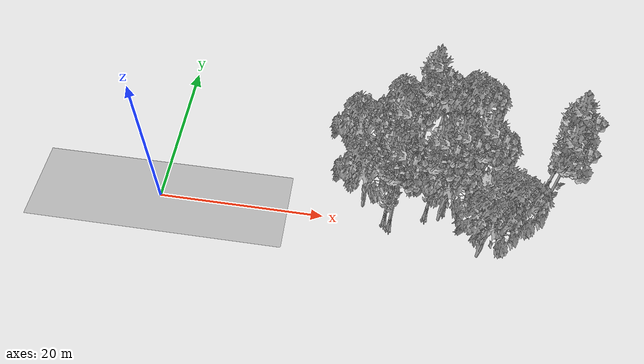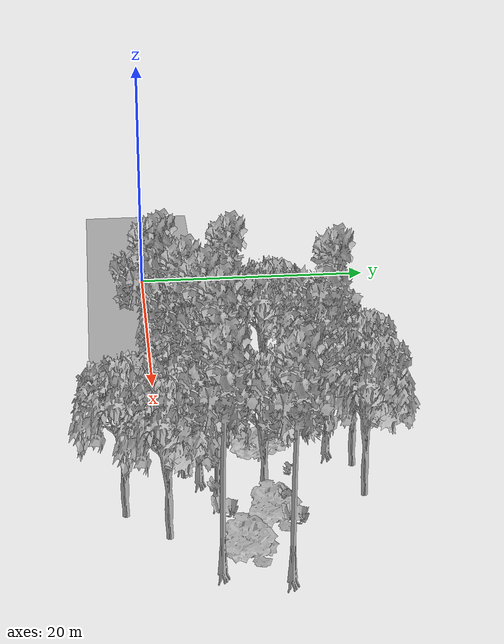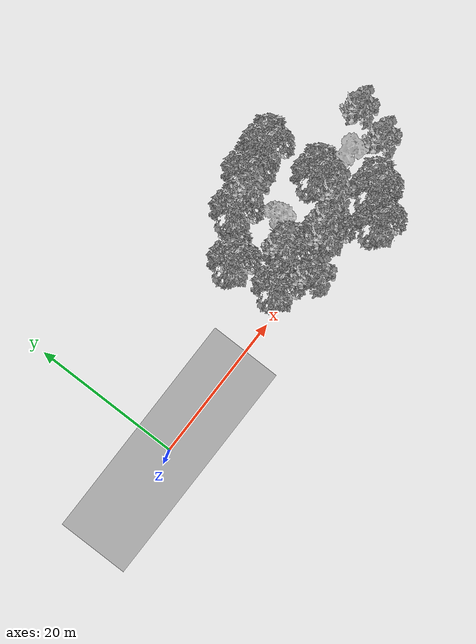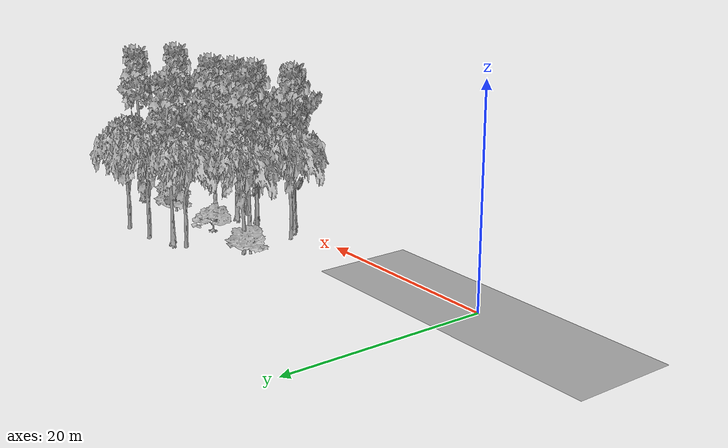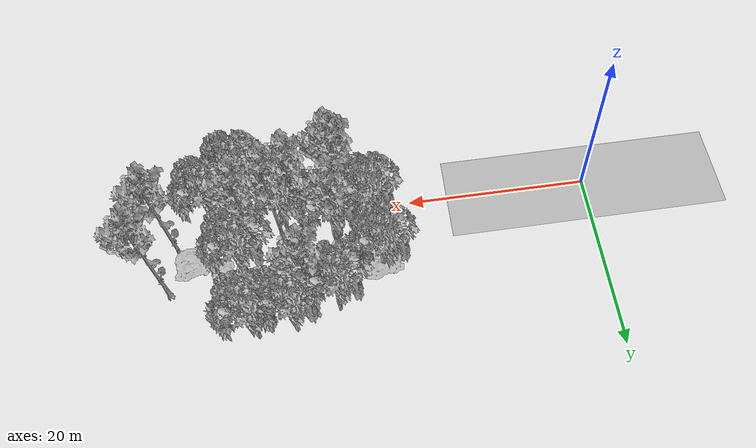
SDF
<sdf version="1.7">
 <world name="default">
  <model name="ground_plane">
   <static>1</static>
   <link name="link">
    <collision name="collision">
     <pose>-50 0 0 0 -0 0</pose>
     <geometry><plane><normal>0 0 1</normal><size>100 100</size></plane></geometry>
     <surface><contact><ode><min_depth>0.01</min_depth><max_vel>0</max_vel></ode></contact></surface>
    </collision>
    <visual name="grass">
     <cast_shadows>0</cast_shadows>
     <geometry>
      <mesh>
       <scale>0.5814285714285714 0.18142857142857144 0.1</scale>
       <uri>file://grass_plane/meshes/grass_plane.dae</uri>
      </mesh>
     </geometry>
    </visual>
   </link>
  </model>
  <model name="Tree 5">
   <static>1</static>
   <pose>43.62478168935962 4.813290201069382 0 1.57079 -0 0</pose>
   <link name="link">
    <collision name="collision">
     <geometry><mesh><scale>3 2 3</scale><uri>model://tree_3/meshes/tree_3.obj</uri></mesh></geometry>
    </collision>
    <visual name="visual">
     <geometry><mesh><scale>3 2 3</scale><uri>model://tree_3/meshes/tree_3.obj</uri></mesh></geometry>
    </visual>
   </link>
  </model>
  <model name="Tree 13">
   <static>1</static>
   <pose>45.245463994499914 3.2660481772489938 0 1.57079 -0 0</pose>
   <link name="link">
    <collision name="collision">
     <geometry><mesh><scale>3.5 5 3.5</scale><uri>model://tree_9/meshes/tree_9.obj</uri></mesh></geometry>
    </collision>
    <visual name="visual">
     <geometry><mesh><scale>3.5 5 3.5</scale><uri>model://tree_9/meshes/tree_9.obj</uri></mesh></geometry>
    </visual>
   </link>
  </model>
  <model name="Tree 16">
   <static>1</static>
   <pose>46.46912115306617 7.537182974908205 0 1.57079 -0 0</pose>
   <link name="link">
    <collision name="collision">
     <geometry><mesh><scale>3.5 5 3.5</scale><uri>model://tree_9/meshes/tree_9.obj</uri></mesh></geometry>
    </collision>
    <visual name="visual">
     <geometry><mesh><scale>3.5 5 3.5</scale><uri>model://tree_9/meshes/tree_9.obj</uri></mesh></geometry>
    </visual>
   </link>
  </model>
  <model name="Tree 31">
   <static>1</static>
   <pose>37.08894391293546 13.711898287033748 0 1.57079 -0 0</pose>
   <link name="link">
    <collision name="collision">
     <geometry><mesh><scale>3.5 5 3.5</scale><uri>model://tree_2/meshes/tree_2.obj</uri></mesh></geometry>
    </collision>
    <visual name="visual">
     <geometry><mesh><scale>3.5 5 3.5</scale><uri>model://tree_2/meshes/tree_2.obj</uri></mesh></geometry>
    </visual>
   </link>
  </model>
  <model name="Tree 34">
   <static>1</static>
   <pose>33.14917026470475 13.499310667846164 0 1.57079 -0 0</pose>
   <link name="link">
    <collision name="collision">
     <geometry><mesh><scale>3.5 5 3.5</scale><uri>model://tree_2/meshes/tree_2.obj</uri></mesh></geometry>
    </collision>
    <visual name="visual">
     <geometry><mesh><scale>3.5 5 3.5</scale><uri>model://tree_2/meshes/tree_2.obj</uri></mesh></geometry>
    </visual>
   </link>
  </model>
  <model name="Tree 40">
   <static>1</static>
   <pose>33.622242706259556 1.582234339890661 0 1.57079 -0 0</pose>
   <link name="link">
    <collision name="collision">
     <geometry><mesh><scale>3.5 5 3.5</scale><uri>model://tree_2/meshes/tree_2.obj</uri></mesh></geometry>
    </collision>
    <visual name="visual">
     <geometry><mesh><scale>3.5 5 3.5</scale><uri>model://tree_2/meshes/tree_2.obj</uri></mesh></geometry>
    </visual>
   </link>
  </model>
  <model name="Tree 42">
   <static>1</static>
   <pose>38.058702898133205 6.694309310965451 0 1.57079 -0 0</pose>
   <link name="link">
    <collision name="collision">
     <geometry><mesh><scale>3.5 5 3.5</scale><uri>model://tree_2/meshes/tree_2.obj</uri></mesh></geometry>
    </collision>
    <visual name="visual">
     <geometry><mesh><scale>3.5 5 3.5</scale><uri>model://tree_2/meshes/tree_2.obj</uri></mesh></geometry>
    </visual>
   </link>
  </model>
  <model name="Tree 44">
   <static>1</static>
   <pose>32.06771527927923 1.5101250419992631 0 1.57079 -0 0</pose>
   <link name="link">
    <collision name="collision">
     <geometry><mesh><scale>3.5 5 3.5</scale><uri>model://tree_9/meshes/tree_9.obj</uri></mesh></geometry>
    </collision>
    <visual name="visual">
     <geometry><mesh><scale>3.5 5 3.5</scale><uri>model://tree_9/meshes/tree_9.obj</uri></mesh></geometry>
    </visual>
   </link>
  </model>
  <model name="Tree 46">
   <static>1</static>
   <pose>27.922222320662684 -0.5163308460730409 0 1.57079 -0 0</pose>
   <link name="link">
    <collision name="collision">
     <geometry><mesh><scale>3.5 5 3.5</scale><uri>model://tree_9/meshes/tree_9.obj</uri></mesh></geometry>
    </collision>
    <visual name="visual">
     <geometry><mesh><scale>3.5 5 3.5</scale><uri>model://tree_9/meshes/tree_9.obj</uri></mesh></geometry>
    </visual>
   </link>
  </model>
  <model name="Tree 50">
   <static>1</static>
   <pose>24.546027498975775 2.1943663099120343 0 1.57079 -0 0</pose>
   <link name="link">
    <collision name="collision">
     <geometry><mesh><scale>3.5 5 3.5</scale><uri>model://tree_2/meshes/tree_2.obj</uri></mesh></geometry>
    </collision>
    <visual name="visual">
     <geometry><mesh><scale>3.5 5 3.5</scale><uri>model://tree_2/meshes/tree_2.obj</uri></mesh></geometry>
    </visual>
   </link>
  </model>
  <model name="Tree 72">
   <static>1</static>
   <pose>38.167577482382114 -2.6263656185236037 0 1.57079 -0 0</pose>
   <link name="link">
    <collision name="collision">
     <geometry><mesh><scale>3.5 5 3.5</scale><uri>model://tree_2/meshes/tree_2.obj</uri></mesh></geometry>
    </collision>
    <visual name="visual">
     <geometry><mesh><scale>3.5 5 3.5</scale><uri>model://tree_2/meshes/tree_2.obj</uri></mesh></geometry>
    </visual>
   </link>
  </model>
  <model name="Tree 74">
   <static>1</static>
   <pose>28.457238593920806 3.6970628210355265 0 1.57079 -0 0</pose>
   <link name="link">
    <collision name="collision">
     <geometry><mesh><scale>3.5 5 3.5</scale><uri>model://tree_2/meshes/tree_2.obj</uri></mesh></geometry>
    </collision>
    <visual name="visual">
     <geometry><mesh><scale>3.5 5 3.5</scale><uri>model://tree_2/meshes/tree_2.obj</uri></mesh></geometry>
    </visual>
   </link>
  </model>
  <model name="Tree 101">
   <static>1</static>
   <pose>27.298237606302934 0.03997944381172758 0 1.57079 -0 0</pose>
   <link name="link">
    <collision name="collision">
     <geometry><mesh><scale>3.5 5 3.5</scale><uri>model://tree_9/meshes/tree_9.obj</uri></mesh></geometry>
    </collision>
    <visual name="visual">
     <geometry><mesh><scale>3.5 5 3.5</scale><uri>model://tree_9/meshes/tree_9.obj</uri></mesh></geometry>
    </visual>
   </link>
  </model>
  <model name="Tree 111">
   <static>1</static>
   <pose>28.617630091143596 11.816536806002944 0 1.57079 -0 0</pose>
   <link name="link">
    <collision name="collision">
     <geometry><mesh><scale>3.5 5 3.5</scale><uri>model://tree_2/meshes/tree_2.obj</uri></mesh></geometry>
    </collision>
    <visual name="visual">
     <geometry><mesh><scale>3.5 5 3.5</scale><uri>model://tree_2/meshes/tree_2.obj</uri></mesh></geometry>
    </visual>
   </link>
  </model>
  <model name="Tree 116">
   <static>1</static>
   <pose>37.04264641310144 3.6372498178266355 0 1.57079 -0 0</pose>
   <link name="link">
    <collision name="collision">
     <geometry><mesh><scale>3.5 5 3.5</scale><uri>model://tree_9/meshes/tree_9.obj</uri></mesh></geometry>
    </collision>
    <visual name="visual">
     <geometry><mesh><scale>3.5 5 3.5</scale><uri>model://tree_9/meshes/tree_9.obj</uri></mesh></geometry>
    </visual>
   </link>
  </model>
  <model name="Tree 121">
   <static>1</static>
   <pose>34.21984364225588 2.608205622509839 0 1.57079 -0 0</pose>
   <link name="link">
    <collision name="collision">
     <geometry><mesh><scale>3.5 5 3.5</scale><uri>model://tree_9/meshes/tree_9.obj</uri></mesh></geometry>
    </collision>
    <visual name="visual">
     <geometry><mesh><scale>3.5 5 3.5</scale><uri>model://tree_9/meshes/tree_9.obj</uri></mesh></geometry>
    </visual>
   </link>
  </model>
  <model name="Tree 122">
   <static>1</static>
   <pose>23.718608412006205 7.587461049277774 0 1.57079 -0 0</pose>
   <link name="link">
    <collision name="collision">
     <geometry><mesh><scale>3 2 3</scale><uri>model://tree_3/meshes/tree_3.obj</uri></mesh></geometry>
    </collision>
    <visual name="visual">
     <geometry><mesh><scale>3 2 3</scale><uri>model://tree_3/meshes/tree_3.obj</uri></mesh></geometry>
    </visual>
   </link>
  </model>
  <model name="Tree 133">
   <static>1</static>
   <pose>31.548967914928156 7.141350465561423 0 1.57079 -0 0</pose>
   <link name="link">
    <collision name="collision">
     <geometry><mesh><scale>4 2.5 4</scale><uri>model://tree_1/meshes/tree_1.obj</uri></mesh></geometry>
    </collision>
    <visual name="visual">
     <geometry><mesh><scale>4 2.5 4</scale><uri>model://tree_1/meshes/tree_1.obj</uri></mesh></geometry>
    </visual>
   </link>
  </model>
  <model name="Tree 143">
   <static>1</static>
   <pose>28.12378699596522 4.858757958294333 0 1.57079 -0 0</pose>
   <link name="link">
    <collision name="collision">
     <geometry><mesh><scale>3.5 5 3.5</scale><uri>model://tree_9/meshes/tree_9.obj</uri></mesh></geometry>
    </collision>
    <visual name="visual">
     <geometry><mesh><scale>3.5 5 3.5</scale><uri>model://tree_9/meshes/tree_9.obj</uri></mesh></geometry>
    </visual>
   </link>
  </model>
  <model name="Tree 146">
   <static>1</static>
   <pose>31.203743546258337 11.934448401495377 0 1.57079 -0 0</pose>
   <link name="link">
    <collision name="collision">
     <geometry><mesh><scale>3.5 5 3.5</scale><uri>model://tree_9/meshes/tree_9.obj</uri></mesh></geometry>
    </collision>
    <visual name="visual">
     <geometry><mesh><scale>3.5 5 3.5</scale><uri>model://tree_9/meshes/tree_9.obj</uri></mesh></geometry>
    </visual>
   </link>
  </model>
  <model name="Tree 149">
   <static>1</static>
   <pose>41.06068600261344 0.14392975640351402 0 1.57079 -0 0</pose>
   <link name="link">
    <collision name="collision">
     <geometry><mesh><scale>3.5 5 3.5</scale><uri>model://tree_2/meshes/tree_2.obj</uri></mesh></geometry>
    </collision>
    <visual name="visual">
     <geometry><mesh><scale>3.5 5 3.5</scale><uri>model://tree_2/meshes/tree_2.obj</uri></mesh></geometry>
    </visual>
   </link>
  </model>
  <model name="Tree 164">
   <static>1</static>
   <pose>39.794888607722115 6.8991356406663655 0 1.57079 -0 0</pose>
   <link name="link">
    <collision name="collision">
     <geometry><mesh><scale>3 2 3</scale><uri>model://tree_3/meshes/tree_3.obj</uri></mesh></geometry>
    </collision>
    <visual name="visual">
     <geometry><mesh><scale>3 2 3</scale><uri>model://tree_3/meshes/tree_3.obj</uri></mesh></geometry>
    </visual>
   </link>
  </model>
  <model name="Tree 165">
   <static>1</static>
   <pose>23.63749091126968 8.280472804387557 0 1.57079 -0 0</pose>
   <link name="link">
    <collision name="collision">
     <geometry><mesh><scale>3.5 5 3.5</scale><uri>model://tree_2/meshes/tree_2.obj</uri></mesh></geometry>
    </collision>
    <visual name="visual">
     <geometry><mesh><scale>3.5 5 3.5</scale><uri>model://tree_2/meshes/tree_2.obj</uri></mesh></geometry>
    </visual>
   </link>
  </model>
 </world>
</sdf>
